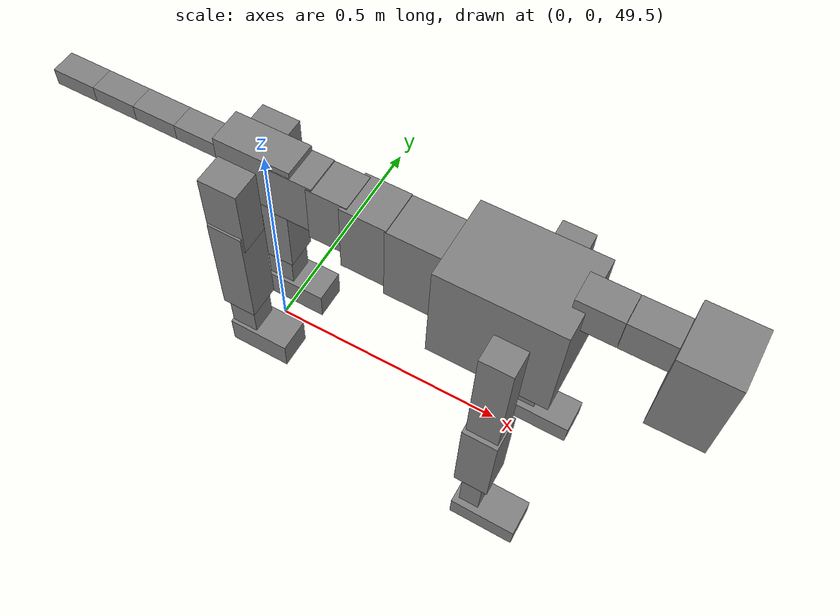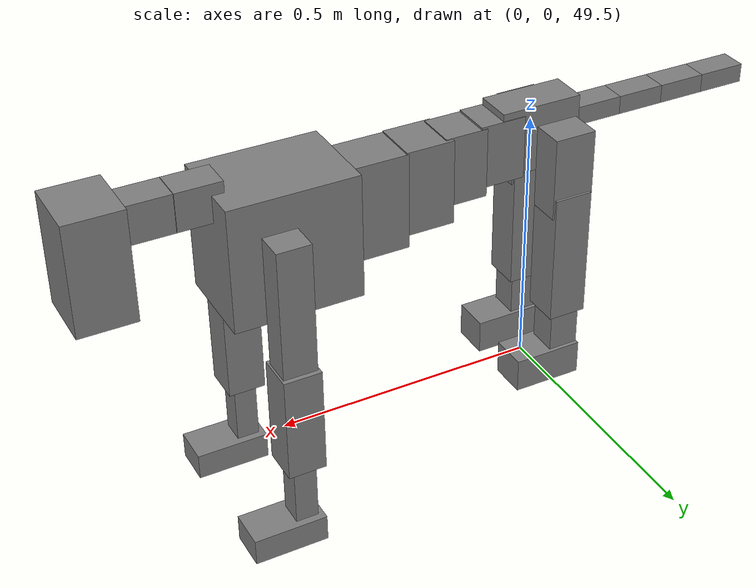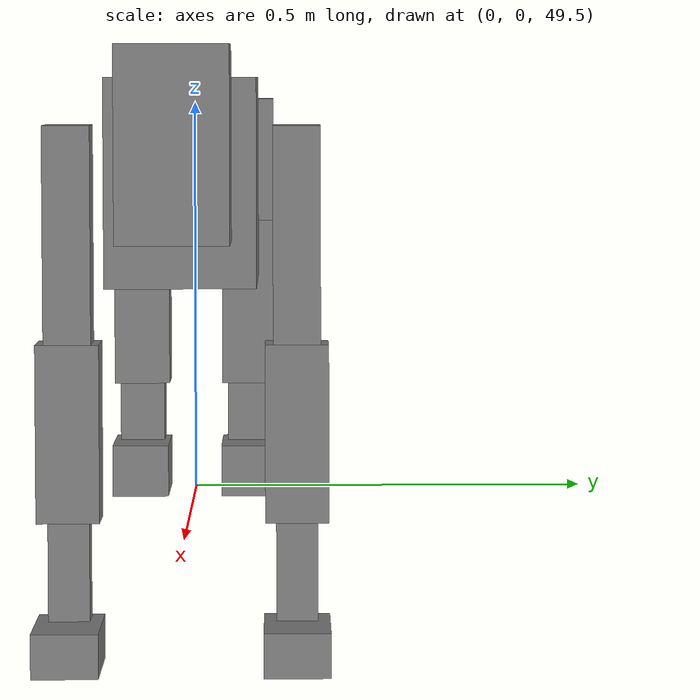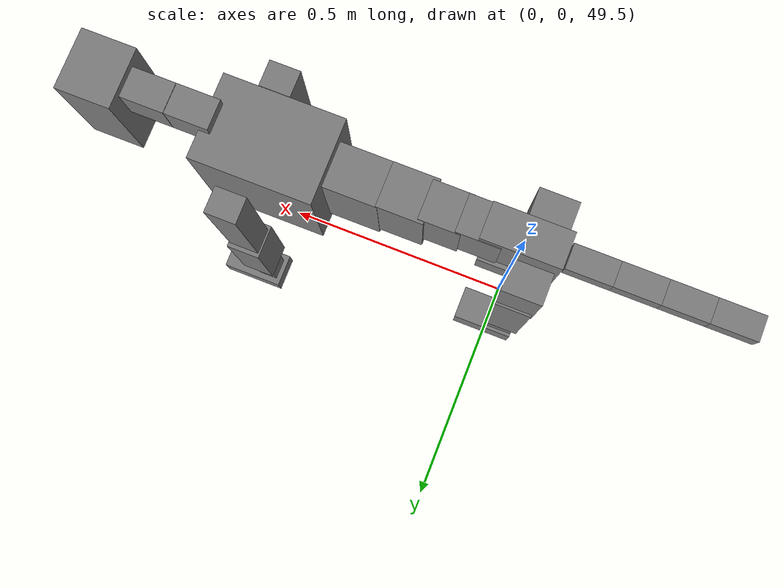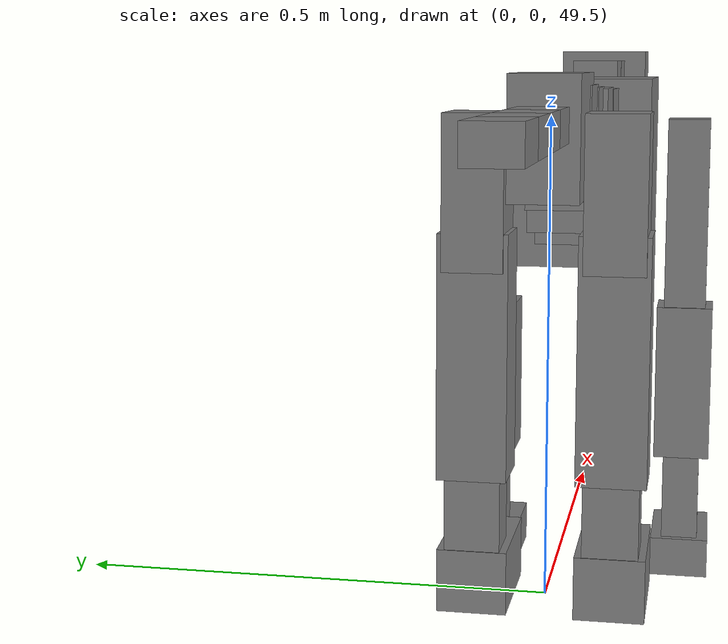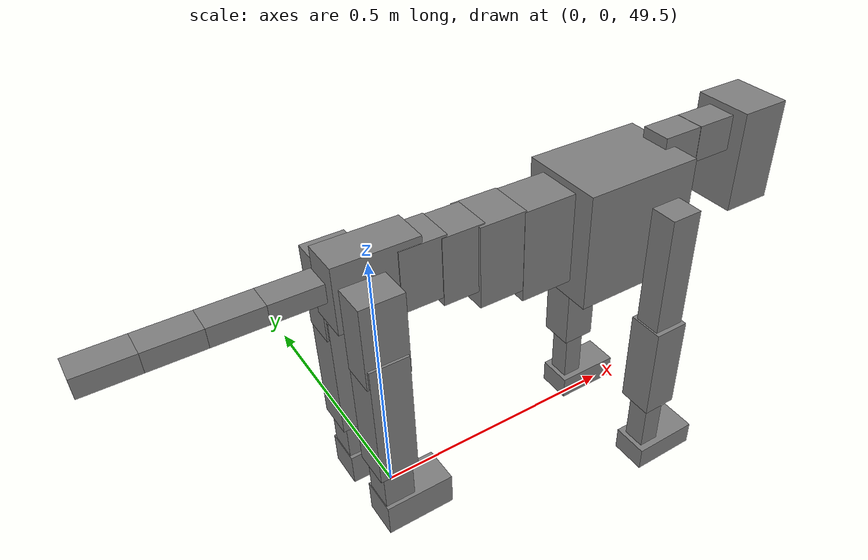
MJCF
<mujoco model="dog">

    <default>
        <joint armature="0.02" stiffness="1" damping="0.2" limited="true"/>
        <geom condim="3" friction="1 0.05 0.05" margin="0.01"/>
        <motor ctrllimited="true" ctrlrange="-1.0 1.0" forcelimited="true" gear="50"/>
    </default>

    <compiler inertiafromgeom="true" angle="radian"/>

    <option timestep="0.016" iterations="50" tolerance="1e-10" solver="Newton" jacobian="dense" cone="pyramidal"/>

    <size nconmax="20000" njmax="60000" nstack="5000000"/>
    <visual>
        <map force="0.1" zfar="30"/>
        <rgba haze="0.15 0.25 0.35 1"/>
        <quality shadowsize="2048"/>
        <global offwidth="800" offheight="800"/>
    </visual>

    <asset>
        <texture type="skybox" builtin="gradient" rgb1="0.3 0.5 0.7" rgb2="0 0 0" width="512" height="512"/>
        <texture name="texplane" type="2d" builtin="checker" rgb1=".2 .3 .4" rgb2=".1 0.15 0.2" width="512" height="512"
                 mark="cross" markrgb=".8 .8 .8"/>
        <texture name="texgeom" type="cube" builtin="flat" mark="cross" width="127" height="1278" rgb1="0.8 0.6 0.4"
                 rgb2="0.8 0.6 0.4" markrgb="1 1 1" random="0.01"/>

        <material name="matplane" reflectance="0.3" texture="texplane" texrepeat="1 1" texuniform="true"/>
        <material name="matgeom" texture="texgeom" texuniform="true" rgba="0.8 0.6 .4 1"/>
    </asset>

    <worldbody>
        <geom name="floor" pos="0 0 0" size="0 0 .25" type="plane" material="matplane" condim="3"/>

        <light directional="false" diffuse=".2 .2 .2" specular="0 0 0" pos="0 0 5" dir="0 0 -1" castshadow="false"/>
        <light mode="targetbodycom" target="torso" directional="false" diffuse=".8 .8 .8" specular="0.3 0.3 0.3"
               pos="0 0 4.0" dir="0 0 -1"/>

        <body name="root" pos="0 0 50">
            <freejoint name="root_1"/>
            <geom type="box" pos="0 0 -0.02" size="0.0774  0.0358  0.063" density="2030"/>

            <body name="spine1" pos="0.054 0 0">
                <joint name="spine1_y" axis="0 1 0" range="0 0.7" limited="true"/>
                <geom type="box" pos="0.02375 0 -0.03" size="0.04375  0.0375  0.05985" density="2030"/>

                <body name="spine2" pos="0.0612 0 0">
                    <joint name="spine2_y" axis="0 1 0" range="-0.15 0.15" limited="true"/>
                    <geom type="box" pos="0.03555  0  -0.04" size="0.04055  0.039  0.06615" density="2030"/>

                    <body name="spine3" pos="0.0730 0 0">
                        <joint name="spine3_y" axis="0 1 0" range="-0.15 0.15" limited="true"/>
                        <geom type="box" pos="0.03555  0  -0.057" size="0.04555  0.0445  0.081" density="2030"/>

                        <body name="spine4" pos="0.0780 0 0">
                            <joint name="spine4_y" axis="0 1 0" range="-0.15 0.15" limited="true"/>
                            <geom type="box" pos="0.05265  0  -0.07" size="0.05265  0.045  0.09135" density="2030"/>

                            <body name="torso" pos="0.1082 0 0">
                                <joint name="torso_y" axis="0 1 0" range="-0.15 0.15" limited="true"/>
                                <geom type="box" pos="0.11925  0  -0.085" size="0.11925  0.085  0.11745"
                                      density="2030"/>

                                <body name="neck1" pos="0.2160  0   0.0180">
                                    <joint name="neck1_y" axis="0 1 0" range="-1.2  -1" limited="true"/>
                                    <geom type="box" pos="0.0423  0  0" size="0.0423  0.03  0.036" density="2325"/>

                                    <body name="neck2" pos="0.0853  0  0">
                                        <joint name="neck2_y" axis="0 1 0" range="0.1  0" limited="true"/>
                                        <geom type="box" pos="0.0423  0  0" size="0.0423  0.03  0.036" density="2325"/>

                                        <body name="head" pos="0.0853  0  0">
                                            <joint name="head_y" axis="0 1 0" range="-0.3  -0.2" limited="true"/>
                                            <geom type="box" pos="0.0531  0  -0.055" size="0.0531  0.06  0.1044"
                                                  density="4030"/>

                                        </body>
                                    </body>
                                </body>

                                <body name="front_shoulder" pos="0.156  0   -0.0480">
                                    <joint name="front_shoulder_y" axis="0 1 0" range="-1 1.5" limited="true"/>
                                    <geom type="box" pos="0 0.13 -0.1106" size="0.0316  0.0270  0.1372" density="1158"/>
                                    <geom type="box" pos="0 -0.13 -0.1106" size="0.0316  0.0270  0.1372"
                                          density="1158"/>

                                    <body name="front_elbow" pos="0  0  -0.2211">
                                        <joint name="front_elbow_y" axis="0 1 0" range="-2 0" limited="true"/>
                                        <geom type="box" pos="0 0.13 -0.1015" size="0.0353  0.0361  0.1015"
                                              density="1081"/>
                                        <geom type="box" pos="0 -0.13 -0.1015" size="0.0353  0.0361  0.1015"
                                              density="1081"/>

                                        <body name="front_wrist" pos="0  0  -0.2031">
                                            <joint name="front_wrist_y" axis="0 1 0" range="-0.2 0" limited="true"/>
                                            <geom type="box" pos="0 0.13 -0.0644" size="0.0213  0.0237  0.0776"
                                                  density="1664"/>
                                            <geom type="box" pos="0 -0.13 -0.0644" size="0.0213  0.0237  0.0776"
                                                  density="1664"/>

                                            <body name="front_finger_end" pos="0  0  -0.1289">
                                                <joint name="front_finger_y" axis="0 1 0" range="-0.4 1"
                                                       limited="true"/>
                                                <geom type="box" pos="0.0378  0.13  -0.0105"
                                                      size="0.0693  0.0378  0.0255" density="1515"/>
                                                <geom type="box" pos="0.0378  -0.13  -0.0105"
                                                      size="0.0693  0.0378  0.0255" density="1515"/>

                                            </body>

                                        </body>
                                    </body>
                                </body>

                            </body>
                        </body>
                    </body>
                </body>
            </body>

            <body name="back_hip" pos="-0.03 0 -0.018">
                <joint name="back_hip_y" axis="0 1 0" range="-1.5 0.3" limited="true"/>
                <geom type="box" pos="0 0.07 -0.0559" size="0.0395  0.0310  0.0787" density="1154"/>
                <geom type="box" pos="0 -0.07 -0.0559" size="0.0395  0.0310  0.0787" density="1154"/>

                <body name="back_knee" pos="0  0  -0.1118">
                    <joint name="back_knee_y" axis="0 1 0" range="0 2.8" limited="true"/>
                    <geom type="box" pos="0 0.07 -0.1099" size="0.0361  0.0356  0.1255" density="1227"/>
                    <geom type="box" pos="0 -0.07 -0.1099" size="0.0361  0.0356  0.1255" density="1227"/>

                    <body name="back_ankle" pos="0  0  -0.2199">
                        <joint name="back_ankle_y" axis="0 1 0" range="-2.2 0" limited="true"/>
                        <geom type="box" pos="0 0.07 -0.0527" size="0.0284  0.0284  0.0640" density="1284"/>
                        <geom type="box" pos="0 -0.07 -0.0527" size="0.0284  0.0284  0.0640" density="1284"/>

                        <body name="back_toe_end" pos="0  0  -0.1054">
                            <joint name="back_toe_y" axis="0 1 0" range="-0.4 1" limited="true"/>
                            <geom type="box" pos="0.0358  0.07  -0.0176" size="0.0656  0.0358  0.0326" density="1515"/>
                            <geom type="box" pos="0.0358  -0.07  -0.0176" size="0.0656  0.0358  0.0326" density="1515"/>

                        </body>
                    </body>
                </body>
            </body>

            <body name="tail1" pos="-0.074 0 -0.006">
                <joint name="tail1_y" axis="0 1 0" range="-0.2 0.2" limited="true"/>
                <geom type="box" pos="-0.0536  0  0" size="0.045  0.025  0.0175" density="1587"/>

                <body name="tail2" pos="-0.09 0 0">
                    <joint name="tail2_y" axis="0 1 0" range="-0.2 0.2" limited="true"/>
                    <geom type="box" pos="-0.0536  0  0" size="0.045  0.025  0.0175" density="1587"/>

                    <body name="tail3" pos="-0.09 0 0">
                        <joint name="tail3_y" axis="0 1 0" range="-0.2 0.2" limited="true"/>
                        <geom type="box" pos="-0.0536  0  0" size="0.045  0.025  0.0175" density="1587"/>

                        <body name="tail4" pos="-0.09 0 0">
                            <joint name="tail4_y" axis="0 1 0" range="-0.2 0.2" limited="true"/>
                            <geom type="box" pos="-0.0536  0  0" size="0.045  0.025  0.0175" density="1587"/>

                        </body>
                    </body>
                </body>
            </body>
        </body>
    </worldbody>

    <actuator>
        <motor joint="spine1_y" forcerange="-150 150     "/>
        <motor joint="spine2_y" forcerange="-150 150     "/>
        <motor joint="spine3_y" forcerange="-150 150     "/>
        <motor joint="spine4_y" forcerange="-150 150     "/>
        <motor joint="torso_y" forcerange="-150 150     "/>
        <motor joint="neck1_y" forcerange="-100 100       "/>
        <motor joint="neck2_y" forcerange="-100 100       "/>
        <motor joint="head_y" forcerange="-150 150       "/>
        <motor joint="front_shoulder_y" forcerange="-100.98 179.29"/>
        <motor joint="front_elbow_y" forcerange="-183.32 179.28"/>
        <motor joint="front_wrist_y" forcerange="-98.89 90.83"/>
        <motor joint="front_finger_y" forcerange="-93.19 68.46"/>
        <motor joint="back_hip_y" forcerange="-394.33 219.16"/>
        <motor joint="back_knee_y" forcerange="-334.69 383.10"/>
        <motor joint="back_angle_y" forcerange="-119.37 235.20"/>
        <motor joint="back_toe_y" forcerange="-133.76 72.41"/>
        <motor joint="tail1_y" forcerange="-50 50     "/>
        <motor joint="tail2_y" forcerange="-50 50     "/>
        <motor joint="tail3_y" forcerange="-50 50     "/>
        <motor joint="tail4_y" forcerange="-50 50     "/>
    </actuator>
</mujoco>
